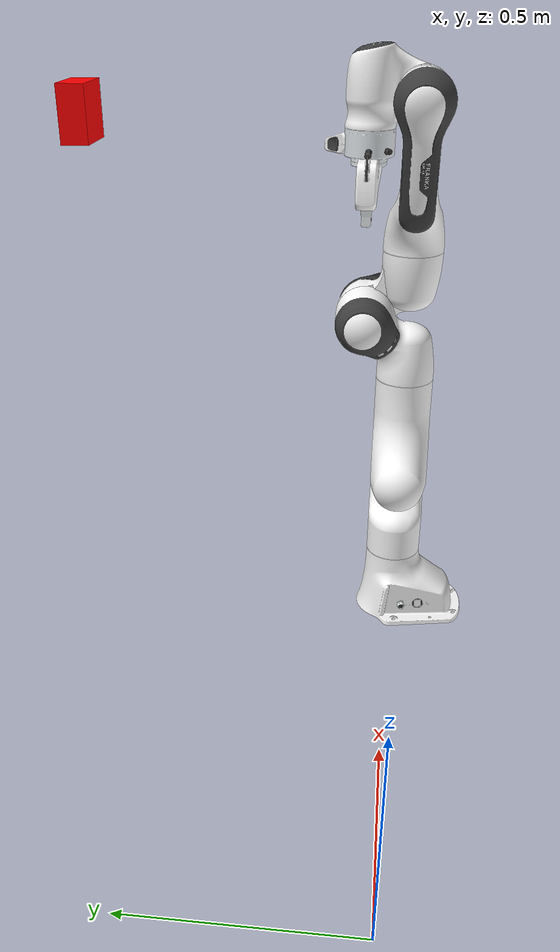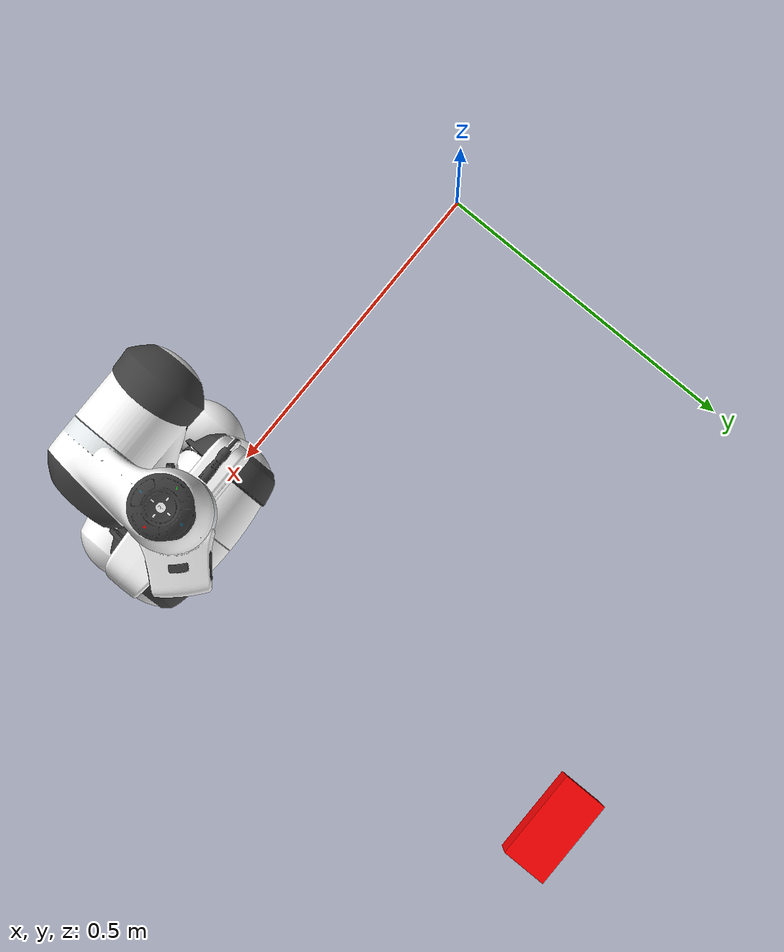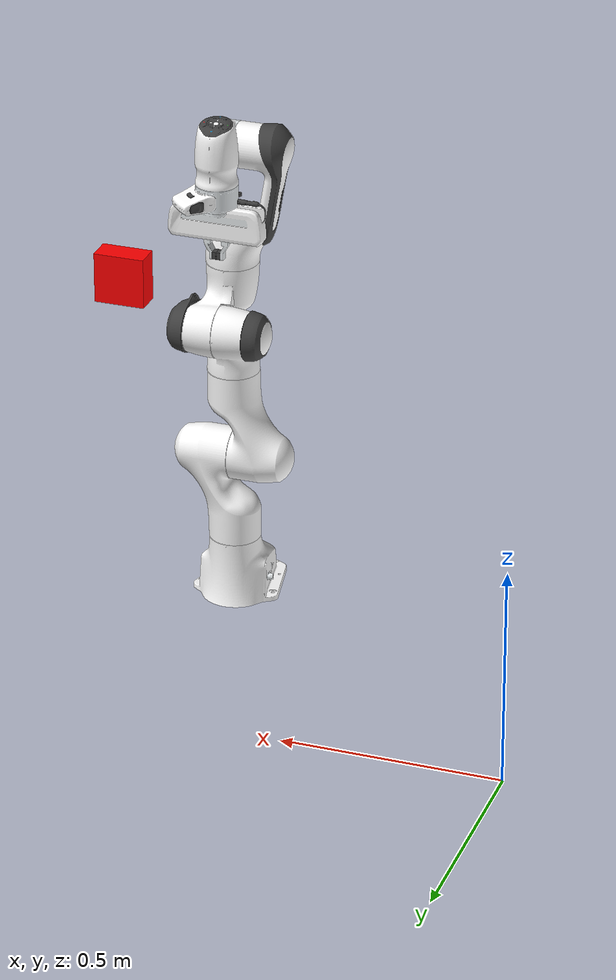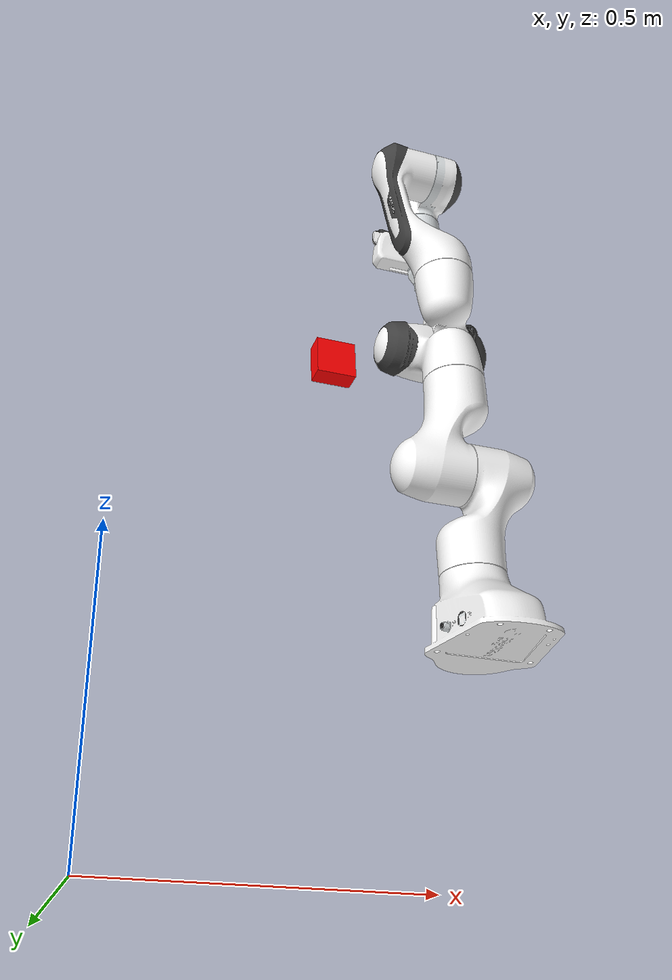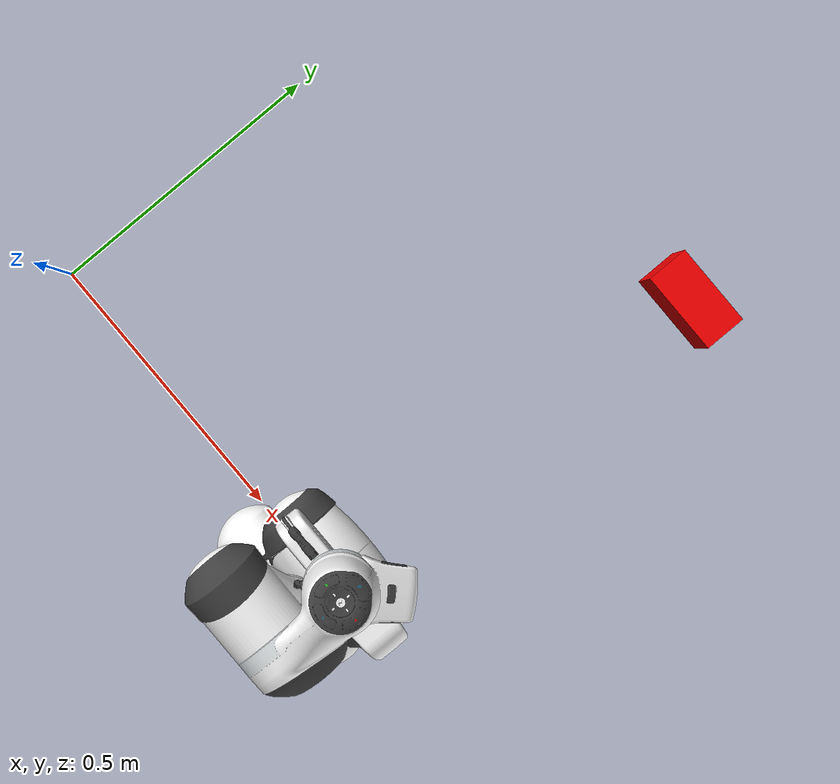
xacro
<?xml version="1.0"?>
<robot name="panda" xmlns:xacro="http://www.ros.org/wiki/xacro">
  <xacro:include filename="$(find panda_description)/urdf/materials.xacro" />
  <xacro:include filename="$(find panda_description)/urdf/arm.xacro" />
  <xacro:include filename="$(find panda_description)/urdf/sensors.xacro" />
  <xacro:include filename="$(find panda_description)/urdf/gazebo.xacro" />
  <xacro:include filename="$(find panda_description)/urdf/ros2control.xacro" />
</robot>

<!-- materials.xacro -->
<robot name="panda" xmlns:xacro="http://www.ros.org/wiki/xacro">
  <material name="red">
    <color rgba="1.0 0.0 0.0 1.000"/>
  </material>
  <material name="green">
    <color rgba="0.0 1.0 0.0 1.000"/>
  </material>
  <material name="blue">
    <color rgba="0.0 0.0 1.0 1.000"/>
  </material>
</robot>

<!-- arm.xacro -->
<robot name="panda" xmlns:xacro="http://www.ros.org/wiki/xacro">
  <link name="world"/>
  <link name="panda_link0">
    <visual>
      <geometry>
        <mesh filename="package://panda_description/meshes/visual/link0.dae"/>
      </geometry>
    </visual>
    <collision>
      <geometry>
        <mesh filename="package://panda_description/meshes/collision/link0.obj"/>
      </geometry>
    </collision>
      <inertial>
          <origin xyz="0 0 0" rpy="0.0 0.0 0.0"/>
          <mass value="0.1"/>
          <inertia ixx="0.1" ixy="0.0" ixz="0.0" iyy="0.1" iyz="0.0" izz="0.1"/>
      </inertial>
  </link>
  <joint name="virtual_joint" type="fixed">
    <parent link="world"/>
    <child link="panda_link0"/>
    <origin xyz="0.6 0 0.35" rpy="0 0 1.57"/>
  </joint>
  <link name="panda_link1">
    <visual>
      <geometry>
        <mesh filename="package://panda_description/meshes/visual/link1.dae"/>
      </geometry>
    </visual>
    <collision>
      <geometry>
        <mesh filename="package://panda_description/meshes/collision/link1.obj"/>
      </geometry>
    </collision>
        <inertial>
            <origin xyz="0 0 0" rpy="0.0 0.0 0.0"/>
            <mass value="0.1"/>
            <inertia ixx="0.1" ixy="0.0" ixz="0.0" iyy="0.1" iyz="0.0" izz="0.1"/>
        </inertial>
  </link>
  <joint name="panda_joint1" type="revolute">
    <safety_controller k_position="100.0" k_velocity="40.0" soft_lower_limit="-2.8973" soft_upper_limit="2.8973"/>
    <origin rpy="0 0 0" xyz="0 0 0.333"/>
    <parent link="panda_link0"/>
    <child link="panda_link1"/>
    <axis xyz="0 0 1"/>
    <limit effort="30.0" lower="-2.9671" upper="2.9671" velocity="10.0"/>
  </joint>
  <link name="panda_link2">
    <visual>
      <geometry>
        <mesh filename="package://panda_description/meshes/visual/link2.dae"/>
      </geometry>
    </visual>
    <collision>
      <geometry>
        <mesh filename="package://panda_description/meshes/collision/link2.obj"/>
      </geometry>
    </collision>
        <inertial>
          <origin xyz="0 0 0" rpy="0.0 0.0 0.0"/>
          <mass value="0.1"/>
          <inertia ixx="0.1" ixy="0.0" ixz="0.0" iyy="0.1" iyz="0.0" izz="0.1"/>
      </inertial>
  </link>
  <joint name="panda_joint2" type="revolute">
    <safety_controller k_position="100.0" k_velocity="40.0" soft_lower_limit="-1.7628" soft_upper_limit="1.7628"/>
    <origin rpy="-1.57079632679 0 0" xyz="0 0 0"/>
    <parent link="panda_link1"/>
    <child link="panda_link2"/>
    <axis xyz="0 0 1"/>
    <limit effort="30.0" lower="-1.8326" upper="1.8326" velocity="10.0"/>
  </joint>
  <link name="panda_link3">
    <visual>
      <geometry>
        <mesh filename="package://panda_description/meshes/visual/link3.dae"/>
      </geometry>
    </visual>
    <collision>
      <geometry>
        <mesh filename="package://panda_description/meshes/collision/link3.obj"/>
      </geometry>
    </collision>
      <inertial>
          <origin xyz="0 0 0" rpy="0.0 0.0 0.0"/>
          <mass value="0.1"/>
          <inertia ixx="0.1" ixy="0.0" ixz="0.0" iyy="0.1" iyz="0.0" izz="0.1"/>
      </inertial>
  </link>
  <joint name="panda_joint3" type="revolute">
    <safety_controller k_position="100.0" k_velocity="40.0" soft_lower_limit="-2.8973" soft_upper_limit="2.8973"/>
    <origin rpy="1.57079632679 0 0" xyz="0 -0.316 0"/>
    <parent link="panda_link2"/>
    <child link="panda_link3"/>
    <axis xyz="0 0 1"/>
    <limit effort="30.0" lower="-2.9671" upper="2.9671" velocity="10.0"/>
  </joint>
  <link name="panda_link4">
    <visual>
      <geometry>
        <mesh filename="package://panda_description/meshes/visual/link4.dae"/>
      </geometry>
    </visual>
    <collision>
      <geometry>
        <mesh filename="package://panda_description/meshes/collision/link4.obj"/>
      </geometry>
    </collision>
      <inertial>
          <origin xyz="0 0 0" rpy="0.0 0.0 0.0"/>
          <mass value="0.1"/>
          <inertia ixx="0.1" ixy="0.0" ixz="0.0" iyy="0.1" iyz="0.0" izz="0.1"/>
      </inertial>
  </link>
  <joint name="panda_joint4" type="revolute">
    <safety_controller k_position="100.0" k_velocity="40.0" soft_lower_limit="-3.0718" soft_upper_limit="-0.0698"/>
    <origin rpy="1.57079632679 0 0" xyz="0.0825 0 0"/>
    <parent link="panda_link3"/>
    <child link="panda_link4"/>
    <axis xyz="0 0 1"/>
    <limit effort="30.0" lower="-3.1416" upper="0.0" velocity="10.0"/>
  </joint>
  <link name="panda_link5">
    <visual>
      <geometry>
        <mesh filename="package://panda_description/meshes/visual/link5.dae"/>
      </geometry>
    </visual>
    <collision>
      <geometry>
        <mesh filename="package://panda_description/meshes/collision/link5.obj"/>
      </geometry>
    </collision>
      <inertial>
          <origin xyz="0 0 0" rpy="0.0 0.0 0.0"/>
          <mass value="0.1"/>
          <inertia ixx="0.1" ixy="0.0" ixz="0.0" iyy="0.1" iyz="0.0" izz="0.1"/>
      </inertial>
  </link>
  <joint name="panda_joint5" type="revolute">
    <safety_controller k_position="100.0" k_velocity="40.0" soft_lower_limit="-2.8973" soft_upper_limit="2.8973"/>
    <origin rpy="-1.57079632679 0 0" xyz="-0.0825 0.384 0"/>
    <parent link="panda_link4"/>
    <child link="panda_link5"/>
    <axis xyz="0 0 1"/>
    <limit effort="30.0" lower="-2.9671" upper="2.9671" velocity="10.0"/>
  </joint>
  <link name="panda_link6">
    <visual>
      <geometry>
        <mesh filename="package://panda_description/meshes/visual/link6.dae"/>
      </geometry>
    </visual>
    <collision>
      <geometry>
        <mesh filename="package://panda_description/meshes/collision/link6.obj"/>
      </geometry>
    </collision>
      <inertial>
          <origin xyz="0 0 0" rpy="0.0 0.0 0.0"/>
          <mass value="0.1"/>
          <inertia ixx="0.1" ixy="0.0" ixz="0.0" iyy="0.1" iyz="0.0" izz="0.1"/>
      </inertial>
  </link>
  <joint name="panda_joint6" type="revolute">
    <safety_controller k_position="100.0" k_velocity="40.0" soft_lower_limit="-0.0175" soft_upper_limit="3.7525"/>
    <origin rpy="1.57079632679 0 0" xyz="0 0 0"/>
    <parent link="panda_link5"/>
    <child link="panda_link6"/>
    <axis xyz="0 0 1"/>
    <limit effort="30.0" lower="-0.0873" upper="3.8223" velocity="10.0"/>
  </joint>
  <link name="panda_link7">
    <visual>
      <geometry>
        <mesh filename="package://panda_description/meshes/visual/link7.dae"/>
      </geometry>
    </visual>
    <collision>
      <geometry>
        <mesh filename="package://panda_description/meshes/collision/link7.obj"/>
      </geometry>
    </collision>
      <inertial>
          <origin xyz="0 0 0" rpy="0.0 0.0 0.0"/>
          <mass value="0.1"/>
          <inertia ixx="0.1" ixy="0.0" ixz="0.0" iyy="0.1" iyz="0.0" izz="0.1"/>
      </inertial>
  </link>
  <joint name="panda_joint7" type="revolute">
    <safety_controller k_position="100.0" k_velocity="40.0" soft_lower_limit="-2.8973" soft_upper_limit="2.8973"/>
    <origin rpy="1.57079632679 0 0" xyz="0.088 0 0"/>
    <parent link="panda_link6"/>
    <child link="panda_link7"/>
    <axis xyz="0 0 1"/>
    <limit effort="30.0" lower="-2.9671" upper="2.9671" velocity="10.0"/>
  </joint>
  <link name="panda_hand">
    <visual>
      <geometry>
        <mesh filename="package://panda_description/meshes/visual/hand.dae"/>
      </geometry>
    </visual>
    <collision>
      <geometry>
        <mesh filename="package://panda_description/meshes/collision/hand.obj"/>
      </geometry>
    </collision>
      <inertial>
          <origin xyz="0 0 0" rpy="0.0 0.0 0.0"/>
          <mass value="0.1"/>
          <inertia ixx="0.1" ixy="0.0" ixz="0.0" iyy="0.1" iyz="0.0" izz="0.1"/>
      </inertial>
  </link>
  <joint name="panda_hand_joint" type="fixed">
    <parent link="panda_link7"/>
    <child link="panda_hand"/>
    <origin rpy="0 0 0" xyz="0 0 0.106"/>
  </joint>
  <link name="panda_leftfinger">
    <visual>
      <geometry>
        <mesh filename="package://panda_description/meshes/visual/finger.dae"/>
      </geometry>
    </visual>
    <collision>
      <geometry>
        <mesh filename="package://panda_description/meshes/collision/finger.obj"/>
      </geometry>
    </collision>
      <inertial>
          <origin xyz="0 0 0" rpy="0.0 0.0 0.0"/>
          <mass value="0.1"/>
          <inertia ixx="0.1" ixy="0.0" ixz="0.0" iyy="0.1" iyz="0.0" izz="0.1"/>
      </inertial>
  </link>
  <link name="panda_rightfinger">
    <visual>
      <origin rpy="0 0 3.14159265359" xyz="0 0 0"/>
      <geometry>
        <mesh filename="package://panda_description/meshes/visual/finger.dae"/>
      </geometry>
    </visual>
    <collision>
      <origin rpy="0 0 3.14159265359" xyz="0 0 0"/>
      <geometry>
        <mesh filename="package://panda_description/meshes/collision/finger.obj"/>
      </geometry>
    </collision>
      <inertial>
          <origin xyz="0 0 0" rpy="0.0 0.0 0.0"/>
          <mass value="0.1"/>
          <inertia ixx="0.1" ixy="0.0" ixz="0.0" iyy="0.1" iyz="0.0" izz="0.1"/>
      </inertial>
  </link>
  <gazebo reference="panda_hand">
    <mu1>0.5</mu1>
    <mu2>0.5</mu2>
  </gazebo>
  <gazebo reference="panda_leftfinger">
    <mu1>2.5</mu1>
    <mu2>2.5</mu2>
  </gazebo>
  <gazebo reference="panda_rightfinger">
    <mu1>2.5</mu1>
    <mu2>2.5</mu2>
  </gazebo>
  <joint name="panda_finger_joint1" type="prismatic">
    <parent link="panda_hand"/>
    <child link="panda_leftfinger"/>
    <origin rpy="0 0 0" xyz="0 0 0.0584"/>
    <axis xyz="0 1 0"/>
    <limit effort="5.0" lower="0.0" upper="0.04" velocity="2.0"/>
  </joint>
  <joint name="panda_finger_joint2" type="prismatic">
    <parent link="panda_hand"/>
    <child link="panda_rightfinger"/>
    <origin rpy="0 0 0" xyz="0 0 0.0584"/>
    <axis xyz="0 -1 0"/>
    <limit effort="5.0" lower="0.0" upper="0.04" velocity="2.0"/>
  </joint>
</robot>

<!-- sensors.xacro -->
<robot name="panda" xmlns:xacro="http://www.ros.org/wiki/xacro">
    <link name="camera_link">
        <inertial>
            <origin xyz="0 0 0" rpy="0.0 0.0 0.0"/>
            <mass value="0.1"/>
            <inertia ixx="0.1" ixy="0.0" ixz="0.0" iyy="0.1" iyz="0.0" izz="0.1"/>
        </inertial>
        <visual>
            <origin xyz="0 0 0" rpy="0.0 0.0 0.0"/>
            <geometry>
                <box size="0.1 0.1 0.05"/>
            </geometry>
            <material name="red"/>
        </visual>
        <collision>
            <origin xyz="0 0 0" rpy="0.0 0.0 0.0"/>
            <geometry>
                <box size="0.1 0.1 0.05"/>
            </geometry>
            <material name="red"/>
        </collision>
    </link>
    <joint name="camera_joint" type="fixed">
        <origin xyz="0.6 0 1.0" rpy="0 ${pi/2} 0"/>
        <parent link="panda_link0"/>
        <child link="camera_link"/>
    </joint>
    <link name="camera_link_optical" />
    <joint name="camera_optical_joint" type="fixed">
        <parent link="camera_link"/>
        <child link="camera_link_optical"/>
        <origin xyz="0 0 0" rpy="${-pi/2} 0 ${-pi/2}"/>
    </joint>
    <gazebo reference="camera_link">
        <sensor name="camera" type="camera">
            <pose>0 0 0 0 0 0</pose>
            <visualize>true</visualize>
            <update_rate>10.0</update_rate>
            <alwaysOn>true</alwaysOn>
            <topic>camera/image_raw</topic>
            <gz_frame_id>camera_link_optical</gz_frame_id>
            <camera name="intel_realsense_r200">
                <camera_info_topic>camera/camera_info</camera_info_topic>
                <horizontal_fov>1.0</horizontal_fov>
                <image>
                    <width>640</width>
                    <height>320</height>
                    <format>R8G8B8</format>
                </image>
                <clip>
                    <near>0.05</near>
                    <far>8.0</far>
                </clip>
            </camera>
        </sensor>
  </gazebo>
</robot>
